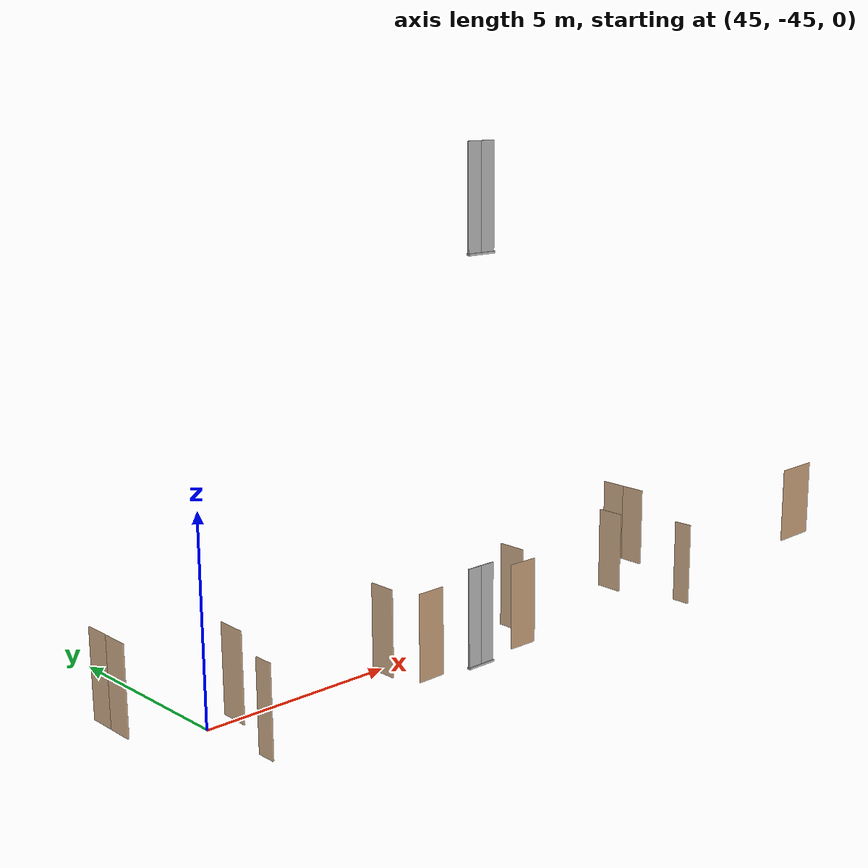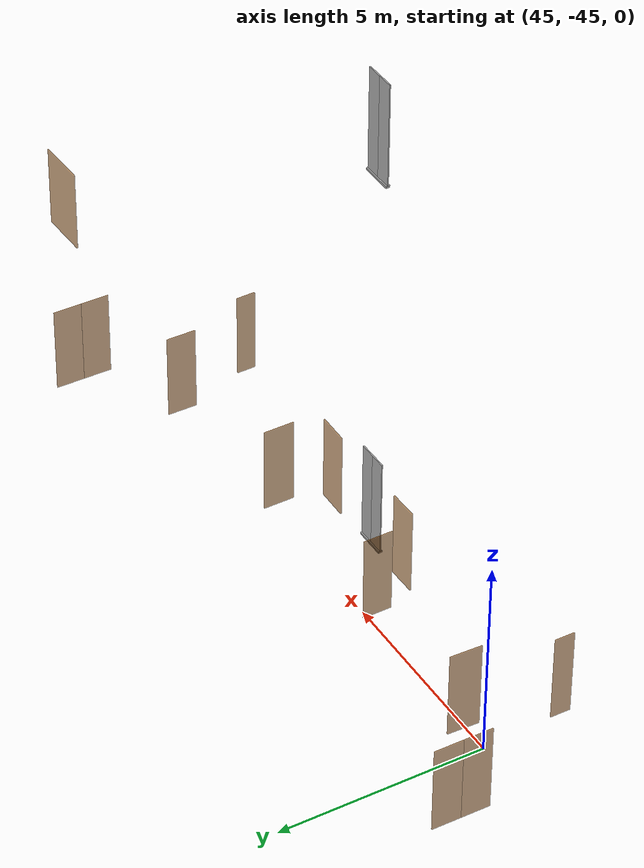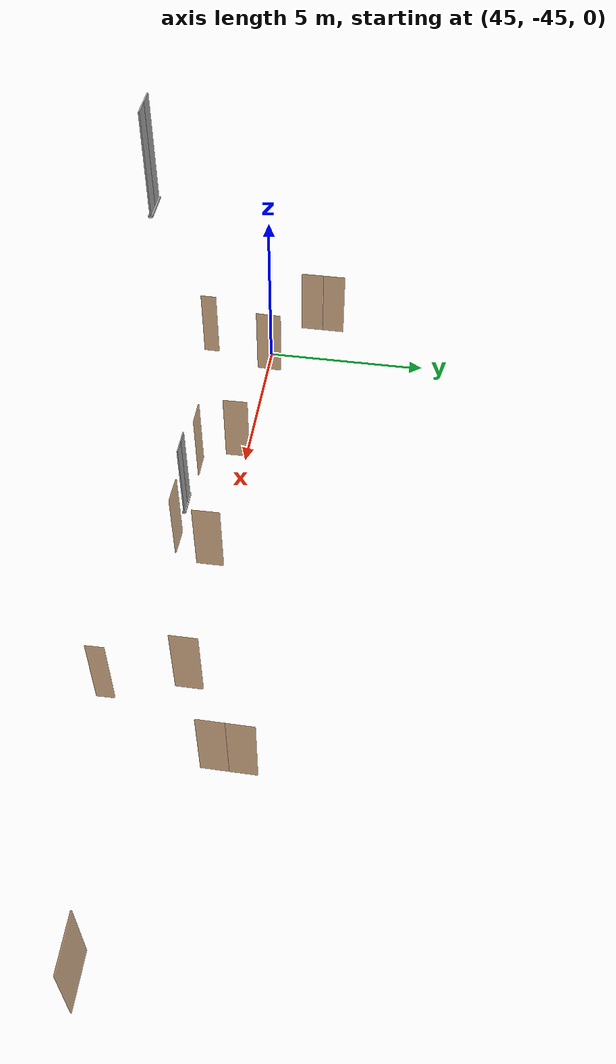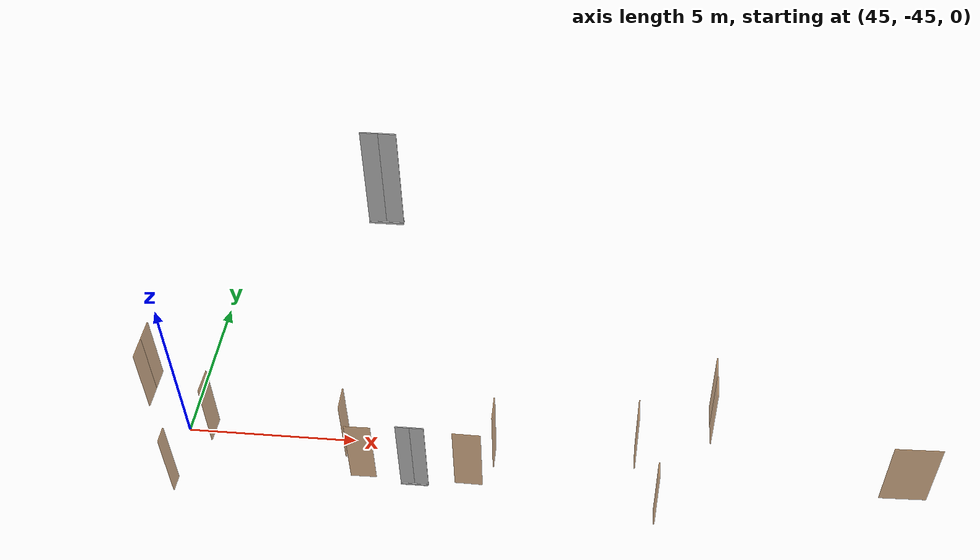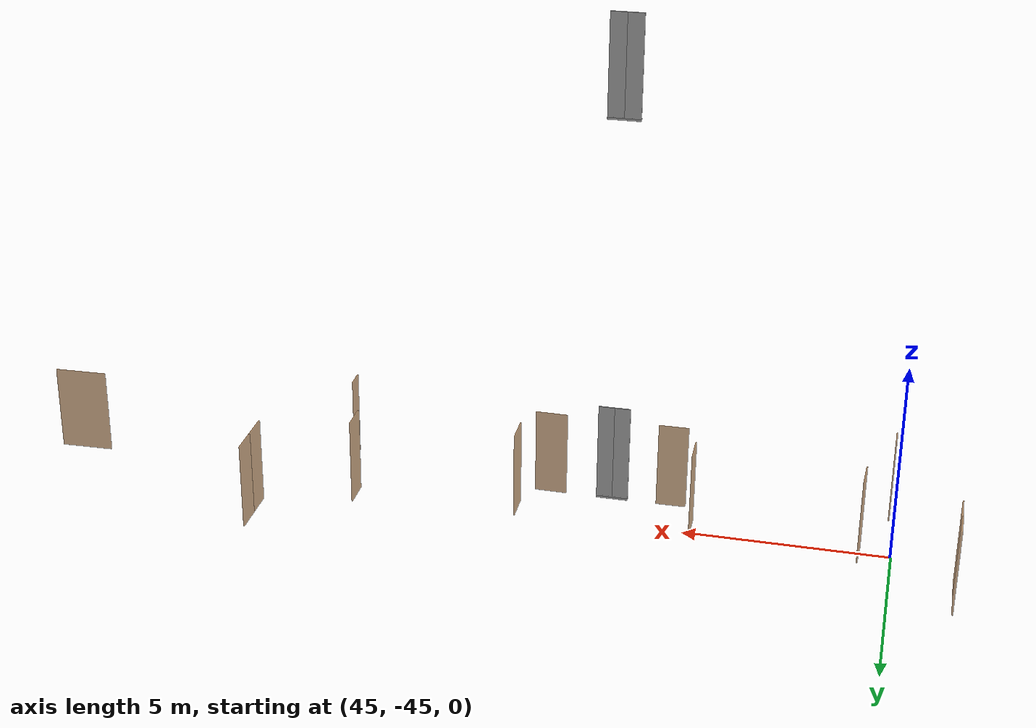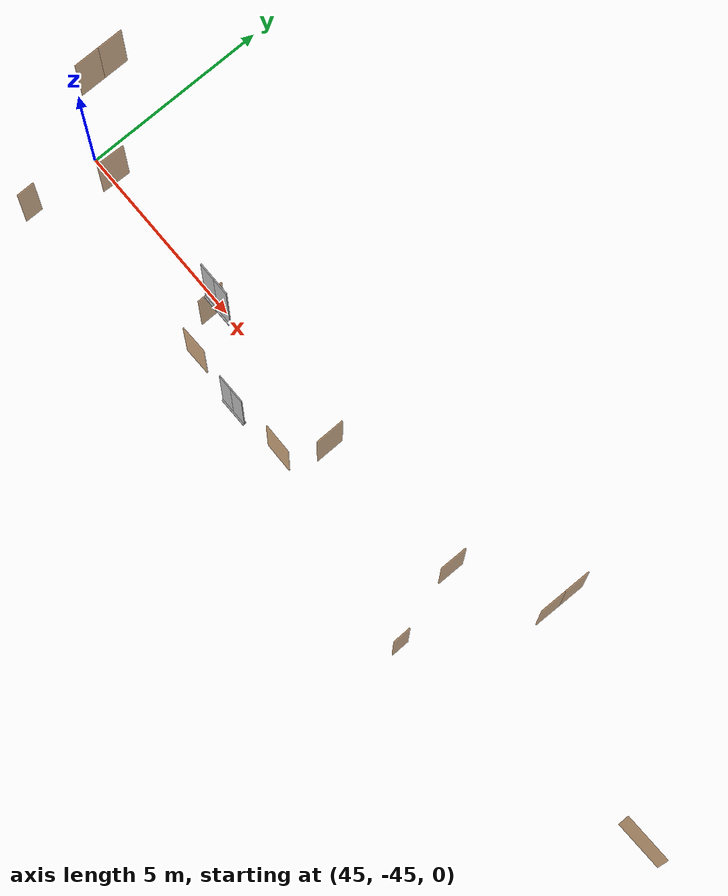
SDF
<sdf version="1.7">
 <world name="sim_world">
  <model name="door36_end">
   <pose>43.51075759257746 -43.49472996693875 0.0 0 0 1.5667686247497805</pose>
   <link name="right">
    <pose>0.3544003418817871 0 1.11 0 0 0</pose>
    <visual name="right_visual">
     <geometry><box><size>0.6988006837635742 0.03 2.2</size></box></geometry>
     <material>
      <ambient>0.5 0.25 0 0.6</ambient>
      <diffuse>0.5 0.25 0 0.6</diffuse>
      <pbr><metal><metalness>0.0</metalness></metal></pbr>
     </material>
    </visual>
    <collision name="right_collision">
     <geometry><box><size>0.6988006837635742 0.03 2.2</size></box></geometry>
     <surface><contact><collide_bitmask>0x02</collide_bitmask></contact></surface>
    </collision>
    <inertial>
     <mass>50.0</mass>
     <inertia><ixx>20.17041666666667</ixx><iyy>22.2013433151185</iyy><izz>2.0384266484518285</izz></inertia>
    </inertial>
   </link>
   <joint name="right_joint" type="revolute">
    <parent>world</parent>
    <child>right</child>
    <axis><xyz>0 0 1</xyz><limit><lower>0</lower><upper>1.57</upper></limit></axis>
    <pose>0.3544003418817871 0 0 0 0 0</pose>
   </joint>
   <link name="left">
    <pose>-0.3544003418817871 0 1.11 0 0 0</pose>
    <visual name="left_visual">
     <geometry><box><size>0.6988006837635742 0.03 2.2</size></box></geometry>
     <material>
      <ambient>0.5 0.25 0 0.6</ambient>
      <diffuse>0.5 0.25 0 0.6</diffuse>
      <pbr><metal><metalness>0.0</metalness></metal></pbr>
     </material>
    </visual>
    <collision name="left_collision">
     <geometry><box><size>0.6988006837635742 0.03 2.2</size></box></geometry>
     <surface><contact><collide_bitmask>0x02</collide_bitmask></contact></surface>
    </collision>
    <inertial>
     <mass>50.0</mass>
     <inertia><ixx>20.17041666666667</ixx><iyy>22.2013433151185</iyy><izz>2.0384266484518285</izz></inertia>
    </inertial>
   </link>
   <joint name="left_joint" type="revolute">
    <parent>world</parent>
    <child>left</child>
    <axis><xyz>0 0 1</xyz><limit><lower>-1.57</lower><upper>0</upper></limit></axis>
    <pose>-0.3544003418817871 0 0 0 0 0</pose>
   </joint>
   <plugin name="register_component" filename="libregister_component.so">
    <component name="Door">
     <v_max_door>0.5</v_max_door>
     <a_max_door>0.3</a_max_door>
     <a_nom_door>0.15</a_nom_door>
     <dx_min_door>0.01</dx_min_door>
     <f_max_door>500.0</f_max_door>
     <ros_interface>true</ros_interface>
     <door name="door36_end" type="DoubleSwingDoor" left_joint_name="left_joint" right_joint_name="right_joint"/>
    </component>
   </plugin>
  </model>
  <model name="door37">
   <pose>45.75023425020082 -44.9492007648427 0.0 0 0 1.535102477328866</pose>
   <link name="right">
    <pose>0 0 1.11 0 0 0</pose>
    <visual name="right_visual">
     <geometry><box><size>0.7761732290088359 0.03 2.2</size></box></geometry>
     <material>
      <ambient>0.5 0.25 0 0.6</ambient>
      <diffuse>0.5 0.25 0 0.6</diffuse>
      <pbr><metal><metalness>0.0</metalness></metal></pbr>
     </material>
    </visual>
    <collision name="right_collision">
     <geometry><box><size>0.7761732290088359 0.03 2.2</size></box></geometry>
     <surface><contact><collide_bitmask>0x02</collide_bitmask></contact></surface>
    </collision>
    <inertial>
     <mass>50.0</mass>
     <inertia><ixx>20.17041666666667</ixx><iyy>22.67685367262502</iyy><izz>2.5139370059583452</izz></inertia>
    </inertial>
   </link>
   <joint name="right_joint" type="revolute">
    <parent>world</parent>
    <child>right</child>
    <axis><xyz>0 0 -1</xyz><limit><lower>0</lower><upper>1.57</upper></limit></axis>
    <pose>0.39308661450441795 0 0 0 0 0</pose>
   </joint>
   <plugin name="register_component" filename="libregister_component.so">
    <component name="Door">
     <v_max_door>0.5</v_max_door>
     <a_max_door>0.3</a_max_door>
     <a_nom_door>0.15</a_nom_door>
     <dx_min_door>0.01</dx_min_door>
     <f_max_door>500.0</f_max_door>
     <ros_interface>true</ros_interface>
     <door name="door37" type="SwingDoor" left_joint_name="empty_joint" right_joint_name="right_joint"/>
    </component>
   </plugin>
  </model>
  <model name="door38">
   <pose>45.11608515621298 -46.994259135333024 0.0 0 0 1.5707963267948966</pose>
   <link name="right">
    <pose>0 0 1.11 0 0 0</pose>
    <visual name="right_visual">
     <geometry><box><size>0.48633469993334955 0.03 2.2</size></box></geometry>
     <material>
      <ambient>0.5 0.25 0 0.6</ambient>
      <diffuse>0.5 0.25 0 0.6</diffuse>
      <pbr><metal><metalness>0.0</metalness></metal></pbr>
     </material>
    </visual>
    <collision name="right_collision">
     <geometry><box><size>0.48633469993334955 0.03 2.2</size></box></geometry>
     <surface><contact><collide_bitmask>0x02</collide_bitmask></contact></surface>
    </collision>
    <inertial>
     <mass>50.0</mass>
     <inertia><ixx>20.17041666666667</ixx><iyy>21.15217266816359</iyy><izz>0.9892560014969216</izz></inertia>
    </inertial>
   </link>
   <joint name="right_joint" type="revolute">
    <parent>world</parent>
    <child>right</child>
    <axis><xyz>0 0 -1</xyz><limit><lower>0</lower><upper>1.57</upper></limit></axis>
    <pose>0.24816734996667478 0 0 0 0 0</pose>
   </joint>
   <plugin name="register_component" filename="libregister_component.so">
    <component name="Door">
     <v_max_door>0.5</v_max_door>
     <a_max_door>0.3</a_max_door>
     <a_nom_door>0.15</a_nom_door>
     <dx_min_door>0.01</dx_min_door>
     <f_max_door>500.0</f_max_door>
     <ros_interface>true</ros_interface>
     <door name="door38" type="SwingDoor" left_joint_name="empty_joint" right_joint_name="right_joint"/>
    </component>
   </plugin>
  </model>
  <model name="door41_end">
   <pose>49.82349734866989 -45.25743548214437 0.0 0 0 1.5823498506551816</pose>
   <link name="right">
    <pose>0 0 1.11 0 0 0</pose>
    <visual name="right_visual">
     <geometry><box><size>0.7200157733813548 0.03 2.2</size></box></geometry>
     <material>
      <ambient>0.5 0.25 0 0.6</ambient>
      <diffuse>0.5 0.25 0 0.6</diffuse>
      <pbr><metal><metalness>0.0</metalness></metal></pbr>
     </material>
    </visual>
    <collision name="right_collision">
     <geometry><box><size>0.7200157733813548 0.03 2.2</size></box></geometry>
     <surface><contact><collide_bitmask>0x02</collide_bitmask></contact></surface>
    </collision>
    <inertial>
     <mass>50.0</mass>
     <inertia><ixx>20.17041666666667</ixx><iyy>22.326761307991465</iyy><izz>2.163844641324794</izz></inertia>
    </inertial>
   </link>
   <joint name="right_joint" type="revolute">
    <parent>world</parent>
    <child>right</child>
    <axis><xyz>0 0 -1</xyz><limit><lower>0</lower><upper>1.57</upper></limit></axis>
    <pose>0.3650078866906774 0 0 0 0 0</pose>
   </joint>
   <plugin name="register_component" filename="libregister_component.so">
    <component name="Door">
     <v_max_door>0.5</v_max_door>
     <a_max_door>0.3</a_max_door>
     <a_nom_door>0.15</a_nom_door>
     <dx_min_door>0.01</dx_min_door>
     <f_max_door>500.0</f_max_door>
     <ros_interface>true</ros_interface>
     <door name="door41_end" type="SwingDoor" left_joint_name="empty_joint" right_joint_name="right_joint"/>
    </component>
   </plugin>
  </model>
  <model name="door48_end">
   <pose>54.16727372724569 -45.25126209288388 0.0 0 0 1.5833114573458777</pose>
   <link name="right">
    <pose>0 0 1.11 0 0 0</pose>
    <visual name="right_visual">
     <geometry><box><size>0.7704586752953649 0.03 2.2</size></box></geometry>
     <material>
      <ambient>0.5 0.25 0 0.6</ambient>
      <diffuse>0.5 0.25 0 0.6</diffuse>
      <pbr><metal><metalness>0.0</metalness></metal></pbr>
     </material>
    </visual>
    <collision name="right_collision">
     <geometry><box><size>0.7704586752953649 0.03 2.2</size></box></geometry>
     <surface><contact><collide_bitmask>0x02</collide_bitmask></contact></surface>
    </collision>
    <inertial>
     <mass>50.0</mass>
     <inertia><ixx>20.17041666666667</ixx><iyy>22.640027376407872</iyy><izz>2.4771107097412024</izz></inertia>
    </inertial>
   </link>
   <joint name="right_joint" type="revolute">
    <parent>world</parent>
    <child>right</child>
    <axis><xyz>0 0 1</xyz><limit><lower>0</lower><upper>1.57</upper></limit></axis>
    <pose>0.3902293376476825 0 0 0 0 0</pose>
   </joint>
   <plugin name="register_component" filename="libregister_component.so">
    <component name="Door">
     <v_max_door>0.5</v_max_door>
     <a_max_door>0.3</a_max_door>
     <a_nom_door>0.15</a_nom_door>
     <dx_min_door>0.01</dx_min_door>
     <f_max_door>500.0</f_max_door>
     <ros_interface>true</ros_interface>
     <door name="door48_end" type="SwingDoor" left_joint_name="empty_joint" right_joint_name="right_joint"/>
    </component>
   </plugin>
  </model>
  <model name="door47">
   <pose>58.26537529799756 -44.976357880979194 0.0 0 0 1.57327502040177</pose>
   <link name="right">
    <pose>0 0 1.11 0 0 0</pose>
    <visual name="right_visual">
     <geometry><box><size>0.7383446026669765 0.03 2.2</size></box></geometry>
     <material>
      <ambient>0.5 0.25 0 0.6</ambient>
      <diffuse>0.5 0.25 0 0.6</diffuse>
      <pbr><metal><metalness>0.0</metalness></metal></pbr>
     </material>
    </visual>
    <collision name="right_collision">
     <geometry><box><size>0.7383446026669765 0.03 2.2</size></box></geometry>
     <surface><contact><collide_bitmask>0x02</collide_bitmask></contact></surface>
    </collision>
    <inertial>
     <mass>50.0</mass>
     <inertia><ixx>20.17041666666667</ixx><iyy>22.438136467864403</iyy><izz>2.2752198011977316</izz></inertia>
    </inertial>
   </link>
   <joint name="right_joint" type="revolute">
    <parent>world</parent>
    <child>right</child>
    <axis><xyz>0 0 1</xyz><limit><lower>0</lower><upper>1.57</upper></limit></axis>
    <pose>0.3741723013334883 0 0 0 0 0</pose>
   </joint>
   <plugin name="register_component" filename="libregister_component.so">
    <component name="Door">
     <v_max_door>0.5</v_max_door>
     <a_max_door>0.3</a_max_door>
     <a_nom_door>0.15</a_nom_door>
     <dx_min_door>0.01</dx_min_door>
     <f_max_door>500.0</f_max_door>
     <ros_interface>true</ros_interface>
     <door name="door47" type="SwingDoor" left_joint_name="empty_joint" right_joint_name="right_joint"/>
    </component>
   </plugin>
  </model>
  <model name="door46">
   <pose>58.85664397221597 -47.03357464017739 0.0 0 0 1.59644527397621</pose>
   <link name="right">
    <pose>0 0 1.11 0 0 0</pose>
    <visual name="right_visual">
     <geometry><box><size>0.48385968100589 0.03 2.2</size></box></geometry>
     <material>
      <ambient>0.5 0.25 0 0.6</ambient>
      <diffuse>0.5 0.25 0 0.6</diffuse>
      <pbr><metal><metalness>0.0</metalness></metal></pbr>
     </material>
    </visual>
    <collision name="right_collision">
     <geometry><box><size>0.48385968100589 0.03 2.2</size></box></geometry>
     <surface><contact><collide_bitmask>0x02</collide_bitmask></contact></surface>
    </collision>
    <inertial>
     <mass>50.0</mass>
     <inertia><ixx>20.17041666666667</ixx><iyy>21.142167462096346</iyy><izz>0.9792507954296735</izz></inertia>
    </inertial>
   </link>
   <joint name="right_joint" type="revolute">
    <parent>world</parent>
    <child>right</child>
    <axis><xyz>0 0 1</xyz><limit><lower>0</lower><upper>1.57</upper></limit></axis>
    <pose>0.246929840502945 0 0 0 0 0</pose>
   </joint>
   <plugin name="register_component" filename="libregister_component.so">
    <component name="Door">
     <v_max_door>0.5</v_max_door>
     <a_max_door>0.3</a_max_door>
     <a_nom_door>0.15</a_nom_door>
     <dx_min_door>0.01</dx_min_door>
     <f_max_door>500.0</f_max_door>
     <ros_interface>true</ros_interface>
     <door name="door46" type="SwingDoor" left_joint_name="empty_joint" right_joint_name="right_joint"/>
    </component>
   </plugin>
  </model>
  <model name="door56">
   <pose>65.9226821333284 -45.77079772287834 0.0 0 0 -3.11463371529568</pose>
   <link name="right">
    <pose>0 0 1.11 0 0 0</pose>
    <visual name="right_visual">
     <geometry><box><size>1.339390373147323 0.03 2.2</size></box></geometry>
     <material>
      <ambient>0.5 0.25 0 0.6</ambient>
      <diffuse>0.5 0.25 0 0.6</diffuse>
      <pbr><metal><metalness>0.0</metalness></metal></pbr>
     </material>
    </visual>
    <collision name="right_collision">
     <geometry><box><size>1.339390373147323 0.03 2.2</size></box></geometry>
     <surface><contact><collide_bitmask>0x02</collide_bitmask></contact></surface>
    </collision>
    <inertial>
     <mass>50.0</mass>
     <inertia><ixx>20.17041666666667</ixx><iyy>27.64152738199886</iyy><izz>7.478610715332187</izz></inertia>
    </inertial>
   </link>
   <joint name="right_joint" type="revolute">
    <parent>world</parent>
    <child>right</child>
    <axis><xyz>0 0 -1</xyz><limit><lower>0</lower><upper>1.57</upper></limit></axis>
    <pose>0.6746951865736615 0 0 0 0 0</pose>
   </joint>
   <plugin name="register_component" filename="libregister_component.so">
    <component name="Door">
     <v_max_door>0.5</v_max_door>
     <a_max_door>0.3</a_max_door>
     <a_nom_door>0.15</a_nom_door>
     <dx_min_door>0.01</dx_min_door>
     <f_max_door>500.0</f_max_door>
     <ros_interface>true</ros_interface>
     <door name="door56" type="SwingDoor" left_joint_name="empty_joint" right_joint_name="right_joint"/>
    </component>
   </plugin>
  </model>
  <model name="door54_end">
   <pose>60.48821568597059 -43.51659767678398 0.0 0 0 1.5688762838817045</pose>
   <link name="right">
    <pose>0.35850647518324924 0 1.11 0 0 0</pose>
    <visual name="right_visual">
     <geometry><box><size>0.7070129503664985 0.03 2.2</size></box></geometry>
     <material>
      <ambient>0.5 0.25 0 0.6</ambient>
      <diffuse>0.5 0.25 0 0.6</diffuse>
      <pbr><metal><metalness>0.0</metalness></metal></pbr>
     </material>
    </visual>
    <collision name="right_collision">
     <geometry><box><size>0.7070129503664985 0.03 2.2</size></box></geometry>
     <surface><contact><collide_bitmask>0x02</collide_bitmask></contact></surface>
    </collision>
    <inertial>
     <mass>50.0</mass>
     <inertia><ixx>20.17041666666667</ixx><iyy>22.24944713327476</iyy><izz>2.086530466608087</izz></inertia>
    </inertial>
   </link>
   <joint name="right_joint" type="revolute">
    <parent>world</parent>
    <child>right</child>
    <axis><xyz>0 0 -1</xyz><limit><lower>0</lower><upper>1.57</upper></limit></axis>
    <pose>0.35850647518324924 0 0 0 0 0</pose>
   </joint>
   <link name="left">
    <pose>-0.35850647518324924 0 1.11 0 0 0</pose>
    <visual name="left_visual">
     <geometry><box><size>0.7070129503664985 0.03 2.2</size></box></geometry>
     <material>
      <ambient>0.5 0.25 0 0.6</ambient>
      <diffuse>0.5 0.25 0 0.6</diffuse>
      <pbr><metal><metalness>0.0</metalness></metal></pbr>
     </material>
    </visual>
    <collision name="left_collision">
     <geometry><box><size>0.7070129503664985 0.03 2.2</size></box></geometry>
     <surface><contact><collide_bitmask>0x02</collide_bitmask></contact></surface>
    </collision>
    <inertial>
     <mass>50.0</mass>
     <inertia><ixx>20.17041666666667</ixx><iyy>22.24944713327476</iyy><izz>2.086530466608087</izz></inertia>
    </inertial>
   </link>
   <joint name="left_joint" type="revolute">
    <parent>world</parent>
    <child>left</child>
    <axis><xyz>0 0 -1</xyz><limit><lower>-1.57</lower><upper>0</upper></limit></axis>
    <pose>-0.35850647518324924 0 0 0 0 0</pose>
   </joint>
   <plugin name="register_component" filename="libregister_component.so">
    <component name="Door">
     <v_max_door>0.5</v_max_door>
     <a_max_door>0.3</a_max_door>
     <a_nom_door>0.15</a_nom_door>
     <dx_min_door>0.01</dx_min_door>
     <f_max_door>500.0</f_max_door>
     <ros_interface>true</ros_interface>
     <door name="door54_end" type="DoubleSwingDoor" left_joint_name="left_joint" right_joint_name="right_joint"/>
    </component>
   </plugin>
  </model>
  <model name="door42_end">
   <pose>50.46102296776968 -46.275899794883514 0.0 0 0 -3.1277409922275115</pose>
   <link name="right">
    <pose>0 0 1.11 0 0 0</pose>
    <visual name="right_visual">
     <geometry><box><size>0.7432837204372719 0.03 2.2</size></box></geometry>
     <material>
      <ambient>0.5 0.25 0 0.6</ambient>
      <diffuse>0.5 0.25 0 0.6</diffuse>
      <pbr><metal><metalness>0.0</metalness></metal></pbr>
     </material>
    </visual>
    <collision name="right_collision">
     <geometry><box><size>0.7432837204372719 0.03 2.2</size></box></geometry>
     <surface><contact><collide_bitmask>0x02</collide_bitmask></contact></surface>
    </collision>
    <inertial>
     <mass>50.0</mass>
     <inertia><ixx>20.17041666666667</ixx><iyy>22.468627871112805</iyy><izz>2.3057112044461356</izz></inertia>
    </inertial>
   </link>
   <joint name="right_joint" type="revolute">
    <parent>world</parent>
    <child>right</child>
    <axis><xyz>0 0 -1</xyz><limit><lower>0</lower><upper>1.57</upper></limit></axis>
    <pose>0.37664186021863594 0 0 0 0 0</pose>
   </joint>
   <plugin name="register_component" filename="libregister_component.so">
    <component name="Door">
     <v_max_door>0.5</v_max_door>
     <a_max_door>0.3</a_max_door>
     <a_nom_door>0.15</a_nom_door>
     <dx_min_door>0.01</dx_min_door>
     <f_max_door>500.0</f_max_door>
     <ros_interface>true</ros_interface>
     <door name="door42_end" type="SwingDoor" left_joint_name="empty_joint" right_joint_name="right_joint"/>
    </component>
   </plugin>
  </model>
  <model name="door43_end">
   <pose>53.52189370209148 -46.28747852262795 0.0 0 0 3.1257657631263567</pose>
   <link name="right">
    <pose>0 0 1.11 0 0 0</pose>
    <visual name="right_visual">
     <geometry><box><size>0.8012791589426598 0.03 2.2</size></box></geometry>
     <material>
      <ambient>0.5 0.25 0 0.6</ambient>
      <diffuse>0.5 0.25 0 0.6</diffuse>
      <pbr><metal><metalness>0.0</metalness></metal></pbr>
     </material>
    </visual>
    <collision name="right_collision">
     <geometry><box><size>0.8012791589426598 0.03 2.2</size></box></geometry>
     <surface><contact><collide_bitmask>0x02</collide_bitmask></contact></surface>
    </collision>
    <inertial>
     <mass>50.0</mass>
     <inertia><ixx>20.17041666666667</ixx><iyy>22.841867877316073</iyy><izz>2.678951210649401</izz></inertia>
    </inertial>
   </link>
   <joint name="right_joint" type="revolute">
    <parent>world</parent>
    <child>right</child>
    <axis><xyz>0 0 1</xyz><limit><lower>0</lower><upper>1.57</upper></limit></axis>
    <pose>0.4056395794713299 0 0 0 0 0</pose>
   </joint>
   <plugin name="register_component" filename="libregister_component.so">
    <component name="Door">
     <v_max_door>0.5</v_max_door>
     <a_max_door>0.3</a_max_door>
     <a_nom_door>0.15</a_nom_door>
     <dx_min_door>0.01</dx_min_door>
     <f_max_door>500.0</f_max_door>
     <ros_interface>true</ros_interface>
     <door name="door43_end" type="SwingDoor" left_joint_name="empty_joint" right_joint_name="right_joint"/>
    </component>
   </plugin>
  </model>
  <model name="ShaftDoor_lift_TD_n0_door_lift">
   <pose>51.9666053711237 -46.39236851920336 0.0 0 0 0.0</pose>
   <link name="right_door">
    <pose>0.2 0 1.25 0 0 0</pose>
    <visual name="right_door_visual">
     <geometry><box><size>0.4 0.03 2.5</size></box></geometry>
     <material>
      <ambient>0.5 0.5 0.5 1</ambient>
      <diffuse>0.7 0.7 0.7 1</diffuse>
      <specular>0.6 0.6 0.6 1</specular>
      <emissive>0.1 0.1 0.1 1</emissive>
     </material>
    </visual>
    <collision name="right_door_collision">
     <geometry><box><size>0.4 0.03 2.5</size></box></geometry>
     <surface><contact><collide_bitmask>0x02</collide_bitmask></contact></surface>
    </collision>
   </link>
   <link name="left_door">
    <pose>-0.2 0 1.25 0 0 0</pose>
    <visual name="left_door_visual">
     <geometry><box><size>0.4 0.03 2.5</size></box></geometry>
     <material>
      <ambient>0.5 0.5 0.5 1</ambient>
      <diffuse>0.7 0.7 0.7 1</diffuse>
      <specular>0.6 0.6 0.6 1</specular>
      <emissive>0.1 0.1 0.1 1</emissive>
     </material>
    </visual>
    <collision name="left_door_collision">
     <geometry><box><size>0.4 0.03 2.5</size></box></geometry>
     <surface><contact><collide_bitmask>0x02</collide_bitmask></contact></surface>
    </collision>
   </link>
   <joint name="right_joint" type="prismatic">
    <parent>world</parent>
    <child>right_door</child>
    <axis><xyz>1 0 0</xyz><limit><lower>0</lower><upper>0.4</upper></limit></axis>
   </joint>
   <joint name="left_joint" type="prismatic">
    <parent>world</parent>
    <child>left_door</child>
    <axis><xyz>1 0 0</xyz><limit><lower>-0.4</lower><upper>0</upper></limit></axis>
   </joint>
   <link name="ramp">
    <pose>0 0 -0.025 0 0 0</pose>
    <visual name="ramp_visual">
     <geometry><box><size>0.8 0.1 0.05</size></box></geometry>
     <material>
      <ambient>0.5 0.5 0.5 1</ambient>
      <diffuse>0.7 0.7 0.7 1</diffuse>
      <specular>0.6 0.6 0.6 1</specular>
      <emissive>0.1 0.1 0.1 1</emissive>
     </material>
    </visual>
    <collision name="ramp_collision">
     <geometry><box><size>0.8 0.1 0.05</size></box></geometry>
     <surface><contact><collide_bitmask>0x02</collide_bitmask></contact></surface>
    </collision>
   </link>
   <joint name="ramp_joint" type="fixed"><parent>world</parent><child>ramp</child></joint>
   <plugin name="register_component" filename="libregister_component.so">
    <component name="Door">
     <v_max_door>0.3</v_max_door>
     <a_max_door>0.2</a_max_door>
     <a_nom_door>0.1</a_nom_door>
     <dx_min_door>0.0001</dx_min_door>
     <f_max_door>35.0</f_max_door>
     <door left_joint_name="left_joint" name="ShaftDoor_lift_TD_n0_door_lift" right_joint_name="right_joint" type="DoubleSlidingDoor"/>
    </component>
   </plugin>
  </model>
  <model name="ShaftDoor_lift_TD_n1_door_lift">
   <pose>51.9666053711237 -46.39236851920336 10.0 0 0 0.0</pose>
   <link name="right_door">
    <pose>0.2 0 1.25 0 0 0</pose>
    <visual name="right_door_visual">
     <geometry><box><size>0.4 0.03 2.5</size></box></geometry>
     <material>
      <ambient>0.5 0.5 0.5 1</ambient>
      <diffuse>0.7 0.7 0.7 1</diffuse>
      <specular>0.6 0.6 0.6 1</specular>
      <emissive>0.1 0.1 0.1 1</emissive>
     </material>
    </visual>
    <collision name="right_door_collision">
     <geometry><box><size>0.4 0.03 2.5</size></box></geometry>
     <surface><contact><collide_bitmask>0x02</collide_bitmask></contact></surface>
    </collision>
   </link>
   <link name="left_door">
    <pose>-0.2 0 1.25 0 0 0</pose>
    <visual name="left_door_visual">
     <geometry><box><size>0.4 0.03 2.5</size></box></geometry>
     <material>
      <ambient>0.5 0.5 0.5 1</ambient>
      <diffuse>0.7 0.7 0.7 1</diffuse>
      <specular>0.6 0.6 0.6 1</specular>
      <emissive>0.1 0.1 0.1 1</emissive>
     </material>
    </visual>
    <collision name="left_door_collision">
     <geometry><box><size>0.4 0.03 2.5</size></box></geometry>
     <surface><contact><collide_bitmask>0x02</collide_bitmask></contact></surface>
    </collision>
   </link>
   <joint name="right_joint" type="prismatic">
    <parent>world</parent>
    <child>right_door</child>
    <axis><xyz>1 0 0</xyz><limit><lower>0</lower><upper>0.4</upper></limit></axis>
   </joint>
   <joint name="left_joint" type="prismatic">
    <parent>world</parent>
    <child>left_door</child>
    <axis><xyz>1 0 0</xyz><limit><lower>-0.4</lower><upper>0</upper></limit></axis>
   </joint>
   <link name="ramp">
    <pose>0 0 -0.025 0 0 0</pose>
    <visual name="ramp_visual">
     <geometry><box><size>0.8 0.1 0.05</size></box></geometry>
     <material>
      <ambient>0.5 0.5 0.5 1</ambient>
      <diffuse>0.7 0.7 0.7 1</diffuse>
      <specular>0.6 0.6 0.6 1</specular>
      <emissive>0.1 0.1 0.1 1</emissive>
     </material>
    </visual>
    <collision name="ramp_collision">
     <geometry><box><size>0.8 0.1 0.05</size></box></geometry>
     <surface><contact><collide_bitmask>0x02</collide_bitmask></contact></surface>
    </collision>
   </link>
   <joint name="ramp_joint" type="fixed"><parent>world</parent><child>ramp</child></joint>
   <plugin name="register_component" filename="libregister_component.so">
    <component name="Door">
     <v_max_door>0.3</v_max_door>
     <a_max_door>0.2</a_max_door>
     <a_nom_door>0.1</a_nom_door>
     <dx_min_door>0.0001</dx_min_door>
     <f_max_door>35.0</f_max_door>
     <door left_joint_name="left_joint" name="ShaftDoor_lift_TD_n1_door_lift" right_joint_name="right_joint" type="DoubleSlidingDoor"/>
    </component>
   </plugin>
  </model>
 </world>
</sdf>
